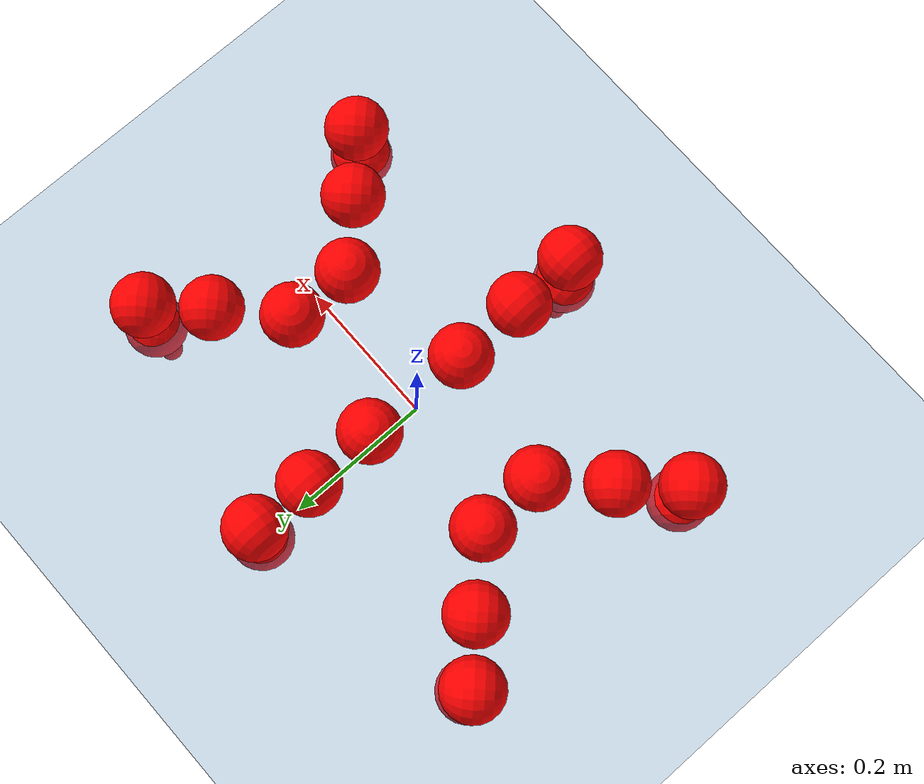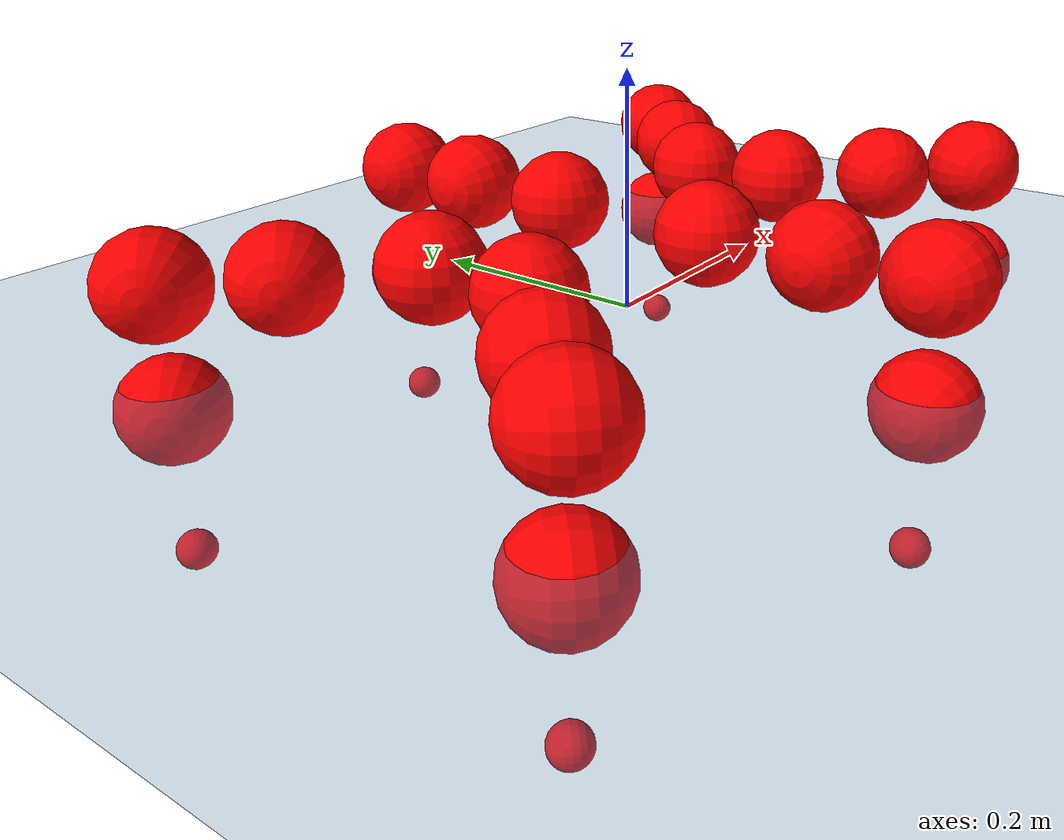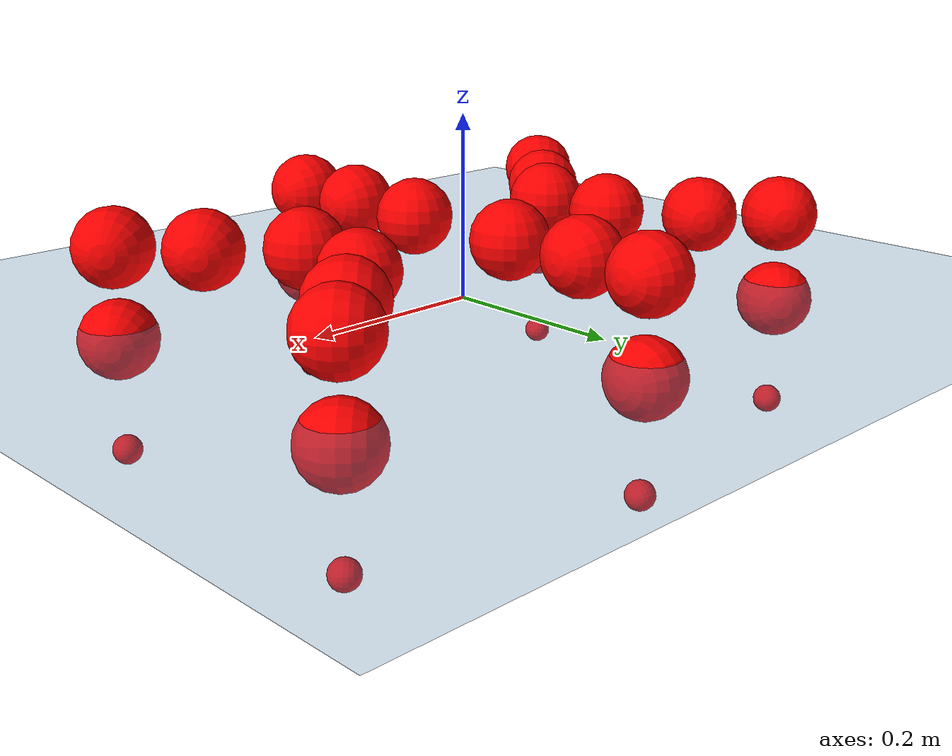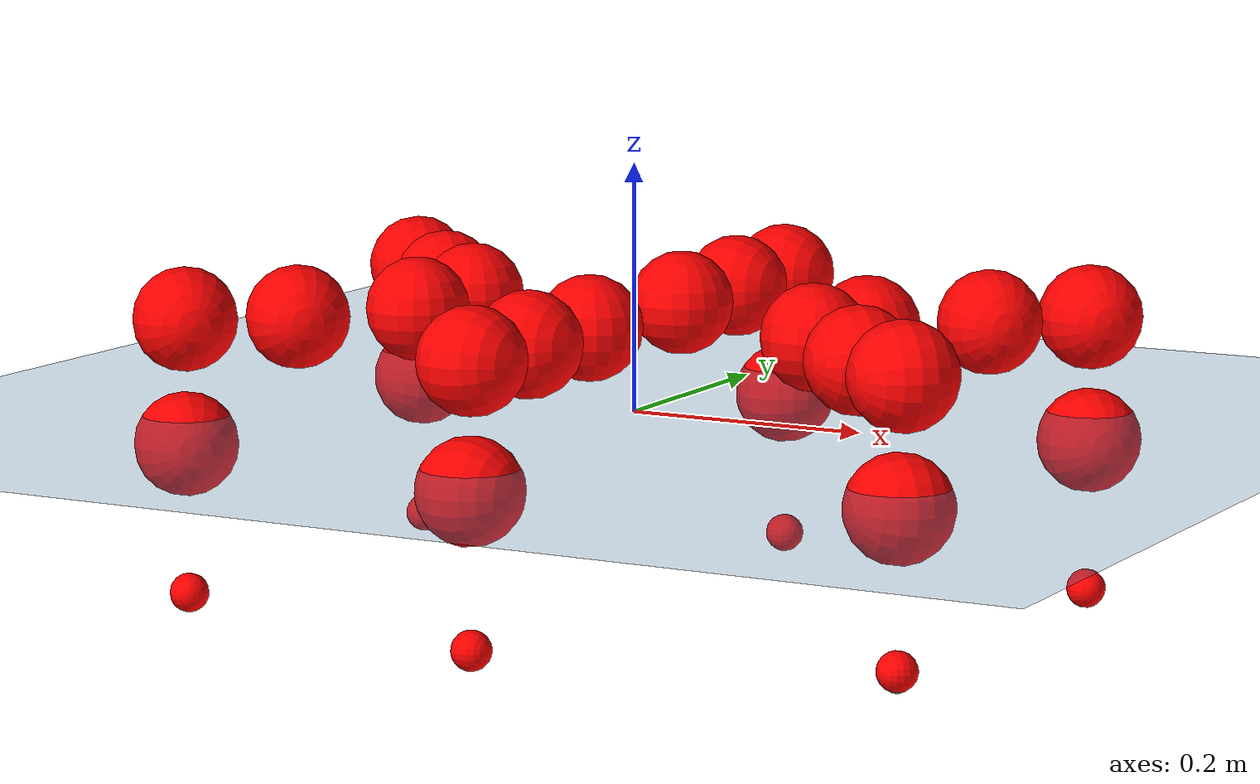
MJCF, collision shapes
<mujoco model="Golem">
  <compiler angle="radian" assetdir="assets" balanceinertia="true" inertiafromgeom="false"/>

  <option timestep="0.005" density="1.2" viscosity="2e-05"/>

  <size nkey="1"/>

  <visual>
    <quality shadowsize="8192"/>
    <map shadowclip="0.5"/>
  </visual>

  <default>
    <default class="/">
      <joint armature="0.01" damping="0.01" frictionloss="0.01"/>
      <geom contype="0" conaffinity="0" group="1" solref="-1000 -80"/>
      <site size="0.01 0.005 0.005" group="5"/>
      <general forcelimited="true" biastype="affine" gainprm="25" biasprm="0 -25 -0.5"/>
      <default class="visual">
        <geom type="mesh" group="2"/>
      </default>
      <default class="collision">
        <geom group="3"/>
      </default>
      <default class="foot">
        <geom size="0.01 0 0" condim="6" group="4" priority="1" solimp="0.015 1 0.01"/>
      </default>
      <default class="reward_collision_sphere">
        <geom group="5" rgba="1 0 0 1"/>
      </default>
    </default>
  </default>

  <asset>
    <texture type="skybox" colorspace="auto" name="//unnamed_texture_0" builtin="gradient" rgb1="0.95 0.95 0.95" rgb2="0.95 0.95 0.95" width="100" height="600"/>
    <texture type="2d" colorspace="auto" name="texplane" builtin="checker" rgb1="0.345 0.575 0.748" rgb2="0.345 0.575 0.748" markrgb="1 1 1" width="512" height="512"/>
    <material name="MatPlane" class="/" texture="texplane" texuniform="true" texrepeat="2 2" specular="0.9"/>
    <mesh name="body" class="/" file="body.stl" scale="0.001 0.001 0.001"/>
    <mesh name="coxa" class="/" file="coxa.stl" scale="0.001 0.001 0.001"/>
    <mesh name="femur" class="/" file="femur.stl" scale="0.001 0.001 0.001"/>
    <mesh name="tibia" class="/" file="tibia.stl" scale="0.001 0.001 0.001"/>
    <mesh name="tarsus" class="/" file="tarsus.stl" scale="0.001 0.001 0.001"/>
  </asset>

  <worldbody>
    <geom name="floor" class="/" size="100 100 0.125" type="plane" group="0" material="MatPlane"/>
    <light name="toplight_shadow" class="/" pos="0 0 5" dir="0.0990148 0.0990148 -0.990148" type="directional" ambient="0.04 0.04 0.04" diffuse="0.55 0.55 0.55" specular="0.12 0.12 0.12"/>
    <light name="toplight_fill" class="/" pos="0 0 5" dir="0.0990148 0.0990148 -0.990148" type="directional" castshadow="false" ambient="0.04 0.04 0.04" diffuse="0.3 0.3 0.3" specular="0.08 0.08 0.08"/>
    <body name="trunk" pos="0.00260824 0.000836778 0.000452878" quat="1 -6.58143e-07 2.0736e-06 2.26944e-06">
      <inertial pos="-0.000620723 -0.000949766 -0.00167493" quat="0.999997 0.00164865 -0.000202448 0.00151173" mass="4.23786" diaginertia="0.0181388 0.00367855 0.0248132"/>
      <joint name="//unnamed_joint_0" type="free"/>
      <geom name="//unnamed_geom_1" class="/" pos="0 0 0.076805" quat="1 0 0 0" type="mesh" rgba="0.9 0.9 0.9 1" mesh="body"/>
      <site name="imu" class="/" pos="0.159965 0.0119819 0.114978" size="0.0105264"/>
      <camera name="track" class="/" pos="0 -1.64624 0" quat="0.707107 0.707107 0 0" mode="trackcom"/>
      <camera name="ego_camera" class="/" pos="0.147514 0 0.120008" quat="-0.5 -0.5 0.5 0.5"/>
      <body name="coxa_RR" pos="-0.202253 -0.0679376 0.076064" quat="0.382563 0.000144893 0.000107688 -0.92393">
        <inertial pos="0.000188 -0.00259981 0.00082428" quat="0.999969 -0.00204992 0.00693382 0.00316235" mass="0.223088" diaginertia="0.0182648 0.00366317 0.0240505"/>
        <joint name="coxa_joint_RR" class="/" pos="0 0 0" axis="0.00066042 0.00481567 -0.999988" range="-3.13954 3.13295" armature="0.00945184" damping="0" frictionloss="0.0104735"/>
        <geom name="//unnamed_geom_2" class="/" type="mesh" rgba="0.2 0.2 0.2 1" mesh="coxa"/>
        <geom name="//unnamed_geom_3" class="reward_collision_sphere" size="0.0421056" pos="-0.0340417 0 0"/>
        <body name="femur_RR" pos="0.0648894 0.000282623 -0.00217161" quat="0.499872 -0.500049 0.499933 0.500146">
          <inertial pos="-6.79697e-05 0.000514342 -0.000247708" quat="0.999988 -0.00167161 -0.00448111 0.000877842" mass="0.232657" diaginertia="0.018731 0.00371629 0.0256107"/>
          <joint name="femur_joint_RR" class="/" pos="0 0 0" axis="0.00296792 0.00544972 -0.999981" range="-3.1869 3.10863" armature="0.0110799" damping="0.00553534" frictionloss="0.011686"/>
          <geom name="//unnamed_geom_4" class="/" type="mesh" rgba="0.9 0.9 0.9 1" mesh="femur"/>
          <geom name="//unnamed_geom_5" class="reward_collision_sphere" size="0.0421056"/>
          <body name="tibia_RR" pos="-0.00269541 -0.0919786 0.00304009" quat="2.1686e-05 0.999999 0.000712398 -0.00100273">
            <inertial pos="-0.00234605 0.00106827 -0.000586383" quat="0.999998 -0.000671643 -0.00150618 -0.00100452" mass="0.236322" diaginertia="0.0185799 0.00378521 0.0242855"/>
            <joint name="tibia_joint_RR" class="/" pos="0 0 0" axis="0.00033826 -0.0100896 0.999949" range="-3.14335 3.15845" armature="0.0108671" damping="0.00137159" frictionloss="0.0105089"/>
            <geom name="//unnamed_geom_6" class="/" type="mesh" rgba="0.2 0.2 0.2 1" mesh="tibia"/>
            <geom name="//unnamed_geom_7" class="reward_collision_sphere" size="0.0421056"/>
            <body name="tarsus_RR" pos="0.101018 0.000622554 0.00185744" quat="1 -2.09103e-05 -4.26927e-05 8.8182e-05">
              <inertial pos="0.0713487 0.000412066 -4.02625e-05" quat="0.50052 0.503625 0.499648 0.496178" mass="0.231965" diaginertia="0.0185823 0.00377836 0.024836"/>
              <joint name="tarsus_joint_RR" class="/" pos="0 0 0" axis="-0.000598718 0.000357102 1" range="-3.18533 3.16266" armature="0.0110688" damping="0.0405197" frictionloss="0.0104943"/>
              <geom name="//unnamed_geom_8" class="/" type="mesh" rgba="0.9 0.9 0.9 1" mesh="tarsus"/>
              <geom name="foot_1" class="foot" size="0.0104445" pos="0.127089 0 0" quat="0 -0.707107 0 0.707107"/>
              <geom name="//unnamed_geom_10" class="reward_collision_sphere" size="0.0421056"/>
              <geom name="//unnamed_geom_11" class="reward_collision_sphere" size="0.0157896" pos="0.121983 0 0"/>
              <site name="foot_1" class="foot" pos="0.127089 0 0" quat="0 -0.707107 0 0.707107" size="0.0105264"/>
            </body>
          </body>
        </body>
      </body>
      <body name="coxa_RM" pos="-0.00073771 -0.110441 0.078156" quat="0.707284 -0.000366047 -0.000393266 -0.706929">
        <inertial pos="0.00183617 -4.4337e-05 0.000658868" quat="1 -4.06618e-05 -0.000429887 -0.000438271" mass="0.233397" diaginertia="0.0186738 0.00364443 0.0252454"/>
        <joint name="coxa_joint_RM" class="/" pos="0 0 0" axis="0.000966744 -0.0014203 -0.999999" range="-3.1262 3.12495" armature="0.010697" damping="0.00199837" frictionloss="0.00915693"/>
        <geom name="//unnamed_geom_12" class="/" type="mesh" rgba="0.2 0.2 0.2 1" mesh="coxa"/>
        <geom name="//unnamed_geom_13" class="reward_collision_sphere" size="0.0421056" pos="-0.0340417 0 0"/>
        <body name="femur_RM" pos="0.0655268 0.00175477 0.00120123" quat="0.499812 -0.500599 0.499029 0.500558">
          <inertial pos="-0.00102743 0.00020242 -0.000208941" quat="0.999993 0.0035835 0.000722077 0.00124534" mass="0.239339" diaginertia="0.0194153 0.00380023 0.0256207"/>
          <joint name="femur_joint_RM" class="/" pos="0 0 0" axis="-0.00364052 -0.000346263 -0.999993" range="-3.13443 3.13697" armature="0.0105112" damping="0.01797" frictionloss="0.0105818"/>
          <geom name="//unnamed_geom_14" class="/" type="mesh" rgba="0.9 0.9 0.9 1" mesh="femur"/>
          <geom name="//unnamed_geom_15" class="reward_collision_sphere" size="0.0421056"/>
          <body name="tibia_RM" pos="-0.000338712 -0.0890326 0.0022907" quat="0.000187872 1 -7.19637e-05 -9.03285e-05">
            <inertial pos="0.00148503 -0.00281623 0.000535772" quat="0.999926 -0.00927613 -0.00647625 -0.0045355" mass="0.228331" diaginertia="0.0189676 0.00393723 0.0252996"/>
            <joint name="tibia_joint_RM" class="/" pos="0 0 0" axis="-0.001617 0.00236833 0.999996" range="-3.18871 3.19113" armature="0.010471" damping="0.0164204" frictionloss="0.00998265"/>
            <geom name="//unnamed_geom_16" class="/" type="mesh" rgba="0.2 0.2 0.2 1" mesh="tibia"/>
            <geom name="//unnamed_geom_17" class="reward_collision_sphere" size="0.0421056"/>
            <body name="tarsus_RM" pos="0.098847 0.000548698 0.0017057" quat="1 6.68239e-05 4.23573e-05 -7.39208e-05">
              <inertial pos="0.0670133 -0.000820563 0.00209761" quat="0.49684 0.507505 0.490788 0.504694" mass="0.240979" diaginertia="0.0182544 0.00373778 0.0242791"/>
              <joint name="tarsus_joint_RM" class="/" pos="0 0 0" axis="0.0019976 0.0018104 0.999996" range="-3.11676 3.1589" armature="0.0103931" damping="0.00361395" frictionloss="0.010655"/>
              <geom name="//unnamed_geom_18" class="/" type="mesh" rgba="0.9 0.9 0.9 1" mesh="tarsus"/>
              <geom name="foot_2" class="foot" size="0.0101466" pos="0.127089 0 0" quat="0 -0.707107 0 0.707107"/>
              <geom name="//unnamed_geom_20" class="reward_collision_sphere" size="0.0421056"/>
              <geom name="//unnamed_geom_21" class="reward_collision_sphere" size="0.0157896" pos="0.121983 0 0"/>
              <site name="foot_2" class="foot" pos="0.127089 0 0" quat="0 -0.707107 0 0.707107" size="0.0105264"/>
            </body>
          </body>
        </body>
      </body>
      <body name="coxa_RF" pos="0.201436 -0.0658478 0.0795607" quat="0.92385 -1.97525e-05 1.04045e-06 -0.382755">
        <inertial pos="0.00105072 0.000585278 0.000844637" quat="1 -0.000132224 -0.000232293 -0.00015154" mass="0.231907" diaginertia="0.0187545 0.00372106 0.0248541"/>
        <joint name="coxa_joint_RF" class="/" pos="0 0 0" axis="0.00185832 0.00241308 -0.999995" stiffness="0.000786223" range="-3.12813 3.11731" armature="0.0117164" damping="0.00409295" frictionloss="0.0107733"/>
        <geom name="//unnamed_geom_22" class="/" type="mesh" rgba="0.2 0.2 0.2 1" mesh="coxa"/>
        <geom name="//unnamed_geom_23" class="reward_collision_sphere" size="0.0421056" pos="-0.0340417 0 0"/>
        <body name="femur_RF" pos="0.0675868 0.000605627 -0.00199738" quat="0.500123 -0.500192 0.49978 0.499905">
          <inertial pos="-0.000280007 -0.0013662 0.000703738" quat="0.999999 -0.0011065 0.0010528 0.000302213" mass="0.233518" diaginertia="0.0188117 0.00373241 0.0256769"/>
          <joint name="femur_joint_RF" class="/" pos="0 0 0" axis="-0.000625242 -0.000653293 -1" stiffness="0.00211249" range="-3.19229 3.11901" armature="0.00920567" damping="0.00995028" frictionloss="0.0115492"/>
          <geom name="//unnamed_geom_24" class="/" type="mesh" rgba="0.9 0.9 0.9 1" mesh="femur"/>
          <geom name="//unnamed_geom_25" class="reward_collision_sphere" size="0.0421056"/>
          <body name="tibia_RF" pos="-0.00255702 -0.0902601 0.00210524" quat="-0.000339078 1 -1.94243e-05 -6.83932e-05">
            <inertial pos="-0.00247098 -0.000399112 0.00100331" quat="1 -0.000380742 -0.00027306 -0.000131823" mass="0.237695" diaginertia="0.0183851 0.00378151 0.0247425"/>
            <joint name="tibia_joint_RF" class="/" pos="0 0 0" axis="0.0109613 -0.00422515 0.999931" range="-3.11805 3.08551" armature="0.0108589" damping="0.0136514" frictionloss="0.0104733"/>
            <geom name="//unnamed_geom_26" class="/" type="mesh" rgba="0.2 0.2 0.2 1" mesh="tibia"/>
            <geom name="//unnamed_geom_27" class="reward_collision_sphere" size="0.0421056"/>
            <body name="tarsus_RF" pos="0.0977029 0.00222066 0.00282291" quat="0.999999 0.000601678 -0.00116381 -0.000242102">
              <inertial pos="0.0680507 -0.000878067 1.75162e-05" quat="0.500949 0.501416 0.499651 0.497976" mass="0.23332" diaginertia="0.0186756 0.00383267 0.0251954"/>
              <joint name="tarsus_joint_RF" class="/" pos="0 0 0" axis="0.0022429 0.00809731 0.999965" range="-3.12916 3.15935" armature="0.0109941" damping="0.0063502" frictionloss="0.0103979"/>
              <geom name="//unnamed_geom_28" class="/" type="mesh" rgba="0.9 0.9 0.9 1" mesh="tarsus"/>
              <geom name="foot_3" class="foot" size="0.011157" pos="0.127089 0 0" quat="0 -0.707107 0 0.707107"/>
              <geom name="//unnamed_geom_30" class="reward_collision_sphere" size="0.0421056"/>
              <geom name="//unnamed_geom_31" class="reward_collision_sphere" size="0.0157896" pos="0.121983 0 0"/>
              <site name="foot_3" class="foot" pos="0.127089 0 0" quat="0 -0.707107 0 0.707107" size="0.0105264"/>
            </body>
          </body>
        </body>
      </body>
      <body name="coxa_LR" pos="-0.204299 0.0714093 0.0761209" quat="0.382683 -9.93603e-06 -4.27861e-05 0.92388">
        <inertial pos="-0.0023869 -0.000139579 -0.00188893" quat="0.999913 -0.0114917 0.00637098 -0.00113576" mass="0.233909" diaginertia="0.0193055 0.00398298 0.0251163"/>
        <joint name="coxa_joint_LR" class="/" pos="0 0 0" axis="-0.0144674 -0.00731816 -0.999869" stiffness="0.00218546" range="-3.1181 3.1318" armature="0.0101102" damping="0.0171223" frictionloss="0.00944064"/>
        <geom name="//unnamed_geom_32" class="/" type="mesh" rgba="0.2 0.2 0.2 1" mesh="coxa"/>
        <geom name="//unnamed_geom_33" class="reward_collision_sphere" size="0.0421056" pos="-0.0340417 0 0"/>
        <body name="femur_LR" pos="0.0703783 -0.00245691 -0.00286043" quat="0.5 -0.5 0.5 0.500001">
          <inertial pos="0.000406002 4.98856e-05 -0.000471298" quat="0.999996 -0.00181661 -0.000517691 0.00211835" mass="0.233612" diaginertia="0.0188121 0.00389041 0.024852"/>
          <joint name="femur_joint_LR" class="/" pos="0 0 0" axis="-0.00552971 0.00196667 0.999983" range="-3.15997 3.12969" armature="0.00999534" damping="0.00804582" frictionloss="0.00913534"/>
          <geom name="//unnamed_geom_34" class="/" type="mesh" rgba="0.9 0.9 0.9 1" mesh="femur"/>
          <geom name="//unnamed_geom_35" class="reward_collision_sphere" size="0.0421056"/>
          <body name="tibia_LR" pos="-0.000811092 -0.0899134 0.00142836" quat="0.000865905 0.999999 8.68974e-05 -0.000975759">
            <inertial pos="0.000244888 0.000762916 7.50121e-05" quat="0.999995 -0.00230281 -0.00216925 0.000384958" mass="0.231206" diaginertia="0.018986 0.00383569 0.0249864"/>
            <joint name="tibia_joint_LR" class="/" pos="0 0 0" axis="3.0343e-06 -7.15328e-05 -1" range="-3.14627 3.09855" armature="0.0103605" damping="0.0104274" frictionloss="0.0107381"/>
            <geom name="//unnamed_geom_36" class="/" type="mesh" rgba="0.2 0.2 0.2 1" mesh="tibia"/>
            <geom name="//unnamed_geom_37" class="reward_collision_sphere" size="0.0421056"/>
            <body name="tarsus_LR" pos="0.0987489 4.67296e-05 0.00258498" quat="0.999999 -0.00136458 7.7302e-05 -1.72228e-05">
              <inertial pos="0.07168 5.39891e-05 -0.00249014" quat="0.50041 0.499133 0.501175 0.49928" mass="0.227259" diaginertia="0.0185206 0.00365615 0.0244798"/>
              <joint name="tarsus_joint_LR" class="/" pos="0 0 0" axis="-0.000111351 -0.00816652 -0.999967" stiffness="0.00159749" range="-3.18459 3.09408" armature="0.010603" damping="0" frictionloss="0.0101175"/>
              <geom name="//unnamed_geom_38" class="/" type="mesh" rgba="0.9 0.9 0.9 1" mesh="tarsus"/>
              <geom name="foot_4" class="foot" size="0.0108767" pos="0.127089 0 0" quat="0.707107 0 -0.707107 0"/>
              <geom name="//unnamed_geom_40" class="reward_collision_sphere" size="0.0421056"/>
              <geom name="//unnamed_geom_41" class="reward_collision_sphere" size="0.0157896" pos="0.121983 0 0"/>
              <site name="foot_4" class="foot" pos="0.127089 0 0" quat="0.707107 0 -0.707107 0" size="0.0105264"/>
            </body>
          </body>
        </body>
      </body>
      <body name="coxa_LM" pos="0.00167515 0.106874 0.0785002" quat="0.706995 -5.96882e-05 0.000182274 0.707219">
        <inertial pos="-0.000810596 0.000692347 0.000644048" quat="0.999982 0.000590178 -0.00560404 -0.00186762" mass="0.235251" diaginertia="0.0188697 0.00380237 0.0250669"/>
        <joint name="coxa_joint_LM" class="/" pos="0 0 0" axis="0.00301704 -0.000597321 -0.999995" range="-3.09471 3.14791" armature="0.0105191" damping="0.00825408" frictionloss="0.0115975"/>
        <geom name="//unnamed_geom_42" class="/" type="mesh" rgba="0.2 0.2 0.2 1" mesh="coxa"/>
        <geom name="//unnamed_geom_43" class="reward_collision_sphere" size="0.0421056" pos="-0.0340417 0 0"/>
        <body name="femur_LM" pos="0.0646575 0.000478853 0.00101051" quat="0.500328 -0.49951 0.500186 0.499976">
          <inertial pos="-3.15737e-05 -0.00246557 0.00263848" quat="0.999915 0.010872 -0.00680758 -0.00216227" mass="0.229998" diaginertia="0.0186459 0.00360706 0.0243668"/>
          <joint name="femur_joint_LM" class="/" pos="0 0 0" axis="-0.000775199 0.00883719 0.999961" range="-3.13555 3.09769" armature="0.0108785" damping="0.00481324" frictionloss="0.0104042"/>
          <geom name="//unnamed_geom_44" class="/" type="mesh" rgba="0.9 0.9 0.9 1" mesh="femur"/>
          <geom name="//unnamed_geom_45" class="reward_collision_sphere" size="0.0421056"/>
          <body name="tibia_LM" pos="0.000441505 -0.0853549 -0.00189229" quat="0.000295138 0.999999 0.000799322 -0.00112885">
            <inertial pos="-0.000866554 -0.00341274 -0.00085302" quat="0.99998 0.0040658 -0.00489517 0.000312879" mass="0.235217" diaginertia="0.0186035 0.00389249 0.0246113"/>
            <joint name="tibia_joint_LM" class="/" pos="0 0 0" axis="0.0030113 0.0053192 -0.999981" range="-3.14524 3.12017" armature="0.0117144" damping="0" frictionloss="0.0103018"/>
            <geom name="//unnamed_geom_46" class="/" type="mesh" rgba="0.2 0.2 0.2 1" mesh="tibia"/>
            <geom name="//unnamed_geom_47" class="reward_collision_sphere" size="0.0421056"/>
            <body name="tarsus_LM" pos="0.102809 0.000905639 0.000625243" quat="0.999999 0.000465637 -0.00115187 0.000425341">
              <inertial pos="0.0667825 0.000115179 -0.000351025" quat="0.499768 0.499972 0.500267 0.499993" mass="0.229524" diaginertia="0.0183107 0.00369892 0.024597"/>
              <joint name="tarsus_joint_LM" class="/" pos="0 0 0" axis="0.000300258 -0.000969171 -0.999999" range="-3.08626 3.11807" armature="0.0118002" damping="0" frictionloss="0.0102724"/>
              <geom name="//unnamed_geom_48" class="/" type="mesh" rgba="0.9 0.9 0.9 1" mesh="tarsus"/>
              <geom name="foot_5" class="foot" size="0.0103932" pos="0.127089 0 0" quat="0.707107 0 -0.707107 0"/>
              <geom name="//unnamed_geom_50" class="reward_collision_sphere" size="0.0421056"/>
              <geom name="//unnamed_geom_51" class="reward_collision_sphere" size="0.0157896" pos="0.121983 0 0"/>
              <site name="foot_5" class="foot" pos="0.127089 0 0" quat="0.707107 0 -0.707107 0" size="0.0105264"/>
            </body>
          </body>
        </body>
      </body>
      <body name="coxa_LF" pos="0.204568 0.0716578 0.0741204" quat="0.923884 5.00888e-05 -3.05471e-05 0.382672">
        <inertial pos="-0.000196007 0.000525951 0.000738124" quat="0.999973 -0.00653871 -0.00343227 0.000415478" mass="0.223598" diaginertia="0.0183135 0.00364266 0.0241979"/>
        <joint name="coxa_joint_LF" class="/" pos="0 0 0" axis="0.0041684 -0.000145064 -0.999991" range="-3.13625 3.19064" armature="0.0117059" damping="0.00317034" frictionloss="0.00981267"/>
        <geom name="//unnamed_geom_52" class="/" type="mesh" rgba="0.2 0.2 0.2 1" mesh="coxa"/>
        <geom name="//unnamed_geom_53" class="reward_collision_sphere" size="0.0421056" pos="-0.0340417 0 0"/>
        <body name="femur_LF" pos="0.068102 -0.00200717 0.000767719" quat="0.499765 -0.499661 0.501082 0.49949">
          <inertial pos="0.00259878 0.000251723 0.000483269" quat="0.999986 0.00345015 -0.00395271 -0.000616081" mass="0.238645" diaginertia="0.0190999 0.00382971 0.0248482"/>
          <joint name="femur_joint_LF" class="/" pos="0 0 0" axis="0.000201088 -0.000613433 1" range="-3.11846 3.12113" armature="0.0117864" damping="0.0152032" frictionloss="0.0110844"/>
          <geom name="//unnamed_geom_54" class="/" type="mesh" rgba="0.9 0.9 0.9 1" mesh="femur"/>
          <geom name="//unnamed_geom_55" class="reward_collision_sphere" size="0.0421056"/>
          <body name="tibia_LF" pos="-0.000107902 -0.0869685 0.00214361" quat="3.42482e-05 1 0.000207342 0.000115288">
            <inertial pos="0.000148379 0.00198216 -0.000264259" quat="0.999987 -0.00301779 4.09993e-05 -0.00419907" mass="0.233032" diaginertia="0.0190256 0.00378971 0.0249097"/>
            <joint name="tibia_joint_LF" class="/" pos="0 0 0" axis="-0.000106922 0.00385772 -0.999993" range="-3.13615 3.14581" armature="0.00993847" damping="0" frictionloss="0.0106553"/>
            <geom name="//unnamed_geom_56" class="/" type="mesh" rgba="0.2 0.2 0.2 1" mesh="tibia"/>
            <geom name="//unnamed_geom_57" class="reward_collision_sphere" size="0.0421056"/>
            <body name="tarsus_LF" pos="0.100052 0.000719036 8.64575e-06" quat="0.999999 -0.00107386 0.00072096 -0.000130858">
              <inertial pos="0.0704531 0.00084857 -3.14611e-05" quat="0.504838 0.497819 0.502955 0.494319" mass="0.231567" diaginertia="0.0186622 0.00382504 0.0246269"/>
              <joint name="tarsus_joint_LF" class="/" pos="0 0 0" axis="0.000130138 -0.000369377 -1" stiffness="0.0294538" range="-3.17663 3.13903" armature="0.0104633" damping="0.0304056" frictionloss="0.0103096"/>
              <geom name="//unnamed_geom_58" class="/" type="mesh" rgba="0.9 0.9 0.9 1" mesh="tarsus"/>
              <geom name="foot_6" class="foot" size="0.0105738" pos="0.127089 0 0" quat="0.707107 0 -0.707107 0"/>
              <geom name="//unnamed_geom_60" class="reward_collision_sphere" size="0.0421056"/>
              <geom name="//unnamed_geom_61" class="reward_collision_sphere" size="0.0157896" pos="0.121983 0 0"/>
              <site name="foot_6" class="foot" pos="0.127089 0 0" quat="0.707107 0 -0.707107 0" size="0.0105264"/>
            </body>
          </body>
        </body>
      </body>
    </body>
  </worldbody>

  <contact>
    <pair class="/" geom1="floor" geom2="foot_1" name="//unnamed_contact_0"/>
    <pair class="/" geom1="floor" geom2="foot_2" name="//unnamed_contact_1"/>
    <pair class="/" geom1="floor" geom2="foot_3" name="//unnamed_contact_2"/>
    <pair class="/" geom1="floor" geom2="foot_4" name="//unnamed_contact_3"/>
    <pair class="/" geom1="floor" geom2="foot_5" name="//unnamed_contact_4"/>
    <pair class="/" geom1="floor" geom2="foot_6" name="//unnamed_contact_5"/>
  </contact>

  <actuator>
    <general name="coxa_joint_RR" class="/" joint="coxa_joint_RR" forcerange="-7.70005 7.70005" gainprm="25.1896" biasprm="0 -25.1896 -0.570703"/>
    <general name="femur_joint_RR" class="/" joint="femur_joint_RR" forcerange="-7.63343 7.63343" gainprm="25.1896" biasprm="0 -25.1896 -0.570703"/>
    <general name="tibia_joint_RR" class="/" joint="tibia_joint_RR" forcerange="-7.58955 7.58955" gainprm="25.1896" biasprm="0 -25.1896 -0.570703"/>
    <general name="tarsus_joint_RR" class="/" joint="tarsus_joint_RR" forcerange="-8.22171 8.22171" gainprm="25.1896" biasprm="0 -25.1896 -0.570703"/>
    <general name="coxa_joint_RM" class="/" joint="coxa_joint_RM" forcerange="-6.92402 6.92402" gainprm="25.1896" biasprm="0 -25.1896 -0.570703"/>
    <general name="femur_joint_RM" class="/" joint="femur_joint_RM" forcerange="-7.95179 7.95179" gainprm="25.1896" biasprm="0 -25.1896 -0.570703"/>
    <general name="tibia_joint_RM" class="/" joint="tibia_joint_RM" forcerange="-7.39484 7.39484" gainprm="25.1896" biasprm="0 -25.1896 -0.570703"/>
    <general name="tarsus_joint_RM" class="/" joint="tarsus_joint_RM" forcerange="-7.73465 7.73465" gainprm="25.1896" biasprm="0 -25.1896 -0.570703"/>
    <general name="coxa_joint_RF" class="/" joint="coxa_joint_RF" forcerange="-6.94336 6.94336" gainprm="25.1896" biasprm="0 -25.1896 -0.570703"/>
    <general name="femur_joint_RF" class="/" joint="femur_joint_RF" forcerange="-7.52798 7.52798" gainprm="25.1896" biasprm="0 -25.1896 -0.570703"/>
    <general name="tibia_joint_RF" class="/" joint="tibia_joint_RF" forcerange="-6.92414 6.92414" gainprm="25.1896" biasprm="0 -25.1896 -0.570703"/>
    <general name="tarsus_joint_RF" class="/" joint="tarsus_joint_RF" forcerange="-7.77791 7.77791" gainprm="25.1896" biasprm="0 -25.1896 -0.570703"/>
    <general name="coxa_joint_LR" class="/" joint="coxa_joint_LR" forcerange="-7.72063 7.72063" gainprm="25.1896" biasprm="0 -25.1896 -0.570703"/>
    <general name="femur_joint_LR" class="/" joint="femur_joint_LR" forcerange="-7.8442 7.8442" gainprm="25.1896" biasprm="0 -25.1896 -0.570703"/>
    <general name="tibia_joint_LR" class="/" joint="tibia_joint_LR" forcerange="-7.52726 7.52726" gainprm="25.1896" biasprm="0 -25.1896 -0.570703"/>
    <general name="tarsus_joint_LR" class="/" joint="tarsus_joint_LR" forcerange="-7.46964 7.46964" gainprm="25.1896" biasprm="0 -25.1896 -0.570703"/>
    <general name="coxa_joint_LM" class="/" joint="coxa_joint_LM" forcerange="-8.31169 8.31169" gainprm="25.1896" biasprm="0 -25.1896 -0.570703"/>
    <general name="femur_joint_LM" class="/" joint="femur_joint_LM" forcerange="-7.72005 7.72005" gainprm="25.1896" biasprm="0 -25.1896 -0.570703"/>
    <general name="tibia_joint_LM" class="/" joint="tibia_joint_LM" forcerange="-7.61066 7.61066" gainprm="25.1896" biasprm="0 -25.1896 -0.570703"/>
    <general name="tarsus_joint_LM" class="/" joint="tarsus_joint_LM" forcerange="-7.84792 7.84792" gainprm="25.1896" biasprm="0 -25.1896 -0.570703"/>
    <general name="coxa_joint_LF" class="/" joint="coxa_joint_LF" forcerange="-6.92628 6.92628" gainprm="25.1896" biasprm="0 -25.1896 -0.570703"/>
    <general name="femur_joint_LF" class="/" joint="femur_joint_LF" forcerange="-7.73452 7.73452" gainprm="25.1896" biasprm="0 -25.1896 -0.570703"/>
    <general name="tibia_joint_LF" class="/" joint="tibia_joint_LF" forcerange="-7.39193 7.39193" gainprm="25.1896" biasprm="0 -25.1896 -0.570703"/>
    <general name="tarsus_joint_LF" class="/" joint="tarsus_joint_LF" forcerange="-7.51455 7.51455" gainprm="25.1896" biasprm="0 -25.1896 -0.570703"/>
  </actuator>

  <sensor>
    <gyro site="imu" name="imu_angular_velocity"/>
    <velocimeter site="imu" name="imu_linear_velocity"/>
    <framelinvel objtype="site" objname="foot_1" name="foot_1_global_linear_velocity"/>
    <framelinvel objtype="site" objname="foot_2" name="foot_2_global_linear_velocity"/>
    <framelinvel objtype="site" objname="foot_3" name="foot_3_global_linear_velocity"/>
    <framelinvel objtype="site" objname="foot_4" name="foot_4_global_linear_velocity"/>
    <framelinvel objtype="site" objname="foot_5" name="foot_5_global_linear_velocity"/>
    <framelinvel objtype="site" objname="foot_6" name="foot_6_global_linear_velocity"/>
  </sensor>

  <keyframe>
    <key name="home" qpos="0 0 0.1457 1 0 0 0 0 0 0 0 0 0 0 0 0 0 0 0 0 0 0 0 0 0 0 0 0 0 0 0"/>
  </keyframe>
</mujoco>
